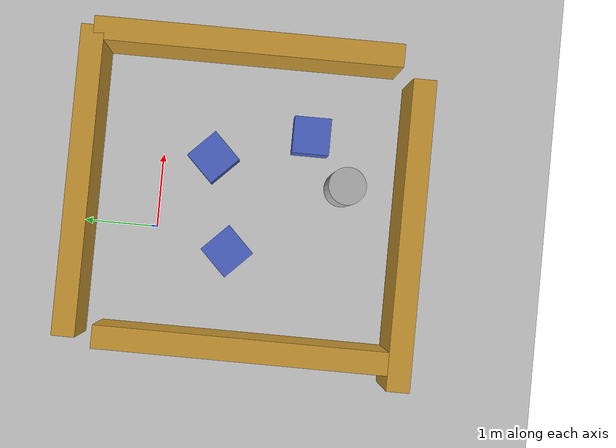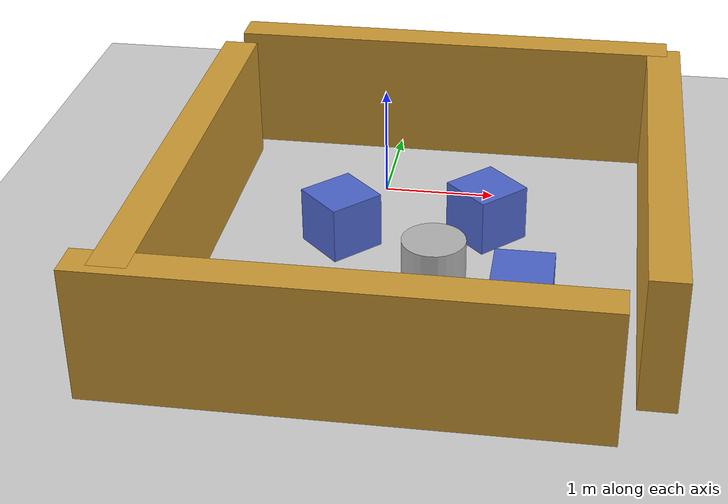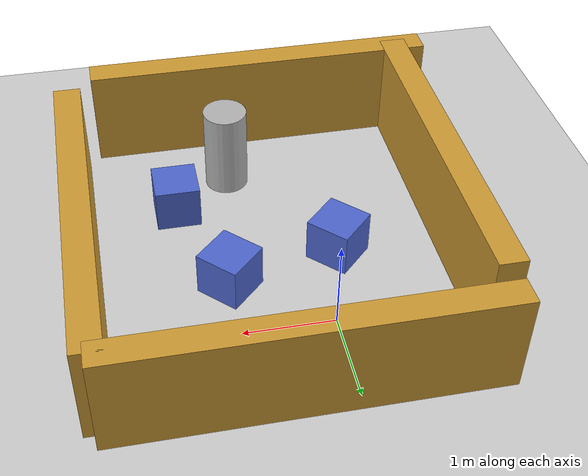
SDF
<sdf version="1.9">
 <world name="gauntlet_harmonic">
  <plugin filename="gz-sim-physics-system" name="gz::sim::systems::Physics"/>
  <plugin filename="gz-sim-imu-system" name="gz::sim::systems::Imu"/>
  <plugin filename="gz-sim-sensors-system" name="gz::sim::systems::Sensors"/>
  <plugin filename="gz-sim-user-commands-system" name="gz::sim::systems::UserCommands"/>
  <plugin filename="gz-sim-scene-broadcaster-system" name="gz::sim::systems::SceneBroadcaster"/>
  <plugin filename="gz-sim-contact-system" name="gz::sim::systems::Contact"/>
  <model name="ground_plane">
   <static>true</static>
   <link name="link">
    <collision name="collision">
     <geometry><plane><normal>0 0 1</normal><size>100 100</size></plane></geometry>
     <surface>
      <contact><ode><kp>1e6</kp><kd>100</kd><max_vel>1</max_vel><min_depth>0.001</min_depth></ode></contact>
      <friction><ode><mu>1.5</mu><mu2>1.5</mu2></ode></friction>
     </surface>
    </collision>
    <visual name="visual">
     <geometry><plane><normal>0 0 1</normal><size>100 100</size></plane></geometry>
     <material>
      <ambient>0.8 0.8 0.8 1</ambient>
      <diffuse>0.8 0.8 0.8 1</diffuse>
      <specular>0.8 0.8 0.8 1</specular>
     </material>
    </visual>
   </link>
  </model>
  <light name="sun" type="directional">
   <direction>-0.5 0.2 -1</direction>
   <diffuse>1 1 1 1</diffuse>
   <specular>0.2 0.2 0.2 1</specular>
  </light>
  <model name="barrier_left">
   <static>true</static>
   <link name="link">
    <visual name="visual">
     <geometry><box><size>4.06542 0.3063 1.143</size></box></geometry>
     <material>
      <ambient>0.8 0.6 0.2 1</ambient>
      <diffuse>0.8 0.6 0.2 1</diffuse>
      <specular>0.2 0.2 0.2 1</specular>
     </material>
    </visual>
    <collision name="collision">
     <geometry><box><size>4.06542 0.3063 1.143</size></box></geometry>
     <surface>
      <contact><ode><kp>1e6</kp><kd>100</kd><max_vel>1</max_vel></ode></contact>
      <friction><ode><mu>1.0</mu><mu2>1.0</mu2></ode></friction>
     </surface>
    </collision>
   </link>
   <pose>2.5 -1.045 0.5715 0 0 -1.5708</pose>
  </model>
  <model name="barrier_center">
   <static>true</static>
   <link name="link">
    <visual name="visual">
     <geometry><box><size>4.06542 0.3063 1.143</size></box></geometry>
     <material>
      <ambient>0.8 0.6 0.2 1</ambient>
      <diffuse>0.8 0.6 0.2 1</diffuse>
      <specular>0.2 0.2 0.2 1</specular>
     </material>
    </visual>
    <collision name="collision">
     <geometry><box><size>4.06542 0.3063 1.143</size></box></geometry>
     <surface>
      <contact><ode><kp>1e6</kp><kd>100</kd><max_vel>1</max_vel></ode></contact>
      <friction><ode><mu>1.0</mu><mu2>1.0</mu2></ode></friction>
     </surface>
    </collision>
   </link>
   <pose>0.5 1 0.5715 0 0 0</pose>
  </model>
  <model name="barrier_right">
   <static>true</static>
   <link name="link">
    <visual name="visual">
     <geometry><box><size>4.06542 0.3063 1.143</size></box></geometry>
     <material>
      <ambient>0.8 0.6 0.2 1</ambient>
      <diffuse>0.8 0.6 0.2 1</diffuse>
      <specular>0.2 0.2 0.2 1</specular>
     </material>
    </visual>
    <collision name="collision">
     <geometry><box><size>4.06542 0.3063 1.143</size></box></geometry>
     <surface>
      <contact><ode><kp>1e6</kp><kd>100</kd><max_vel>1</max_vel></ode></contact>
      <friction><ode><mu>1.0</mu><mu2>1.0</mu2></ode></friction>
     </surface>
    </collision>
   </link>
   <pose>-1.5 -1.4 0.5715 0 0 1.5708</pose>
  </model>
  <model name="barrier_bottom">
   <static>true</static>
   <link name="link">
    <visual name="visual">
     <geometry><box><size>4.06542 0.3063 1.143</size></box></geometry>
     <material>
      <ambient>0.8 0.6 0.2 1</ambient>
      <diffuse>0.8 0.6 0.2 1</diffuse>
      <specular>0.2 0.2 0.2 1</specular>
     </material>
    </visual>
    <collision name="collision">
     <geometry><box><size>4.06542 0.3063 1.143</size></box></geometry>
     <surface>
      <contact><ode><kp>1e6</kp><kd>100</kd><max_vel>1</max_vel></ode></contact>
      <friction><ode><mu>1.0</mu><mu2>1.0</mu2></ode></friction>
     </surface>
    </collision>
   </link>
   <pose>0.184536 -3.3718 0.5715 0 0 0</pose>
  </model>
  <model name="cube_1">
   <static>true</static>
   <link name="link">
    <visual name="visual">
     <geometry><box><size>0.5 0.5 0.5</size></box></geometry>
     <material><ambient>0.3 0.4 0.8 1</ambient><diffuse>0.3 0.4 0.8 1</diffuse></material>
    </visual>
    <collision name="collision">
     <geometry><box><size>0.5 0.5 0.5</size></box></geometry>
     <surface>
      <contact><ode><kp>1e6</kp><kd>100</kd><max_vel>1</max_vel></ode></contact>
      <friction><ode><mu>1.0</mu><mu2>1.0</mu2></ode></friction>
     </surface>
    </collision>
   </link>
   <pose>-0.25 -1 0.25 0 0 0.7853</pose>
  </model>
  <model name="cube_2">
   <static>true</static>
   <link name="link">
    <visual name="visual">
     <geometry><box><size>0.5 0.5 0.5</size></box></geometry>
     <material><ambient>0.3 0.4 0.8 1</ambient><diffuse>0.3 0.4 0.8 1</diffuse></material>
    </visual>
    <collision name="collision">
     <geometry><box><size>0.5 0.5 0.5</size></box></geometry>
     <surface>
      <contact><ode><kp>1e6</kp><kd>100</kd><max_vel>1</max_vel></ode></contact>
      <friction><ode><mu>1.0</mu><mu2>1.0</mu2></ode></friction>
     </surface>
    </collision>
   </link>
   <pose>1.41131 -2 0.25 0 0 0</pose>
  </model>
  <model name="cube_3">
   <static>true</static>
   <link name="link">
    <visual name="visual">
     <geometry><box><size>0.5 0.5 0.5</size></box></geometry>
     <material><ambient>0.3 0.4 0.8 1</ambient><diffuse>0.3 0.4 0.8 1</diffuse></material>
    </visual>
    <collision name="collision">
     <geometry><box><size>0.5 0.5 0.5</size></box></geometry>
     <surface>
      <contact><ode><kp>1e6</kp><kd>100</kd><max_vel>1</max_vel></ode></contact>
      <friction><ode><mu>1.0</mu><mu2>1.0</mu2></ode></friction>
     </surface>
    </collision>
   </link>
   <pose>1 -0.7 0.25 0 0 0.7854</pose>
  </model>
  <model name="bucket">
   <static>true</static>
   <link name="link">
    <visual name="visual">
     <geometry><cylinder><length>1.0</length><radius>0.25</radius></cylinder></geometry>
     <material><ambient>0.7 0.7 0.7 1</ambient><diffuse>0.7 0.7 0.7 1</diffuse></material>
    </visual>
    <collision name="collision">
     <geometry><cylinder><length>1.0</length><radius>0.25</radius></cylinder></geometry>
     <surface>
      <contact><ode><kp>1e6</kp><kd>100</kd><max_vel>1</max_vel></ode></contact>
      <friction><ode><mu>1.0</mu><mu2>1.0</mu2></ode></friction>
     </surface>
    </collision>
   </link>
   <pose>0.75 -2.5 0.5 0 0 0</pose>
  </model>
  <scene><shadows>true</shadows></scene>
  <gravity>0 0 -9.8</gravity>
  <magnetic_field>6e-06 2.3e-05 -4.2e-05</magnetic_field>
  <atmosphere type="adiabatic"/>
  <physics name="default_physics" default="0" type="ode">
   <max_step_size>0.001</max_step_size>
   <real_time_factor>1</real_time_factor>
   <real_time_update_rate>1000</real_time_update_rate>
   <ode><solver><type>quick</type><iters>150</iters><sor>1.4</sor></solver></ode>
  </physics>
 </world>
</sdf>
